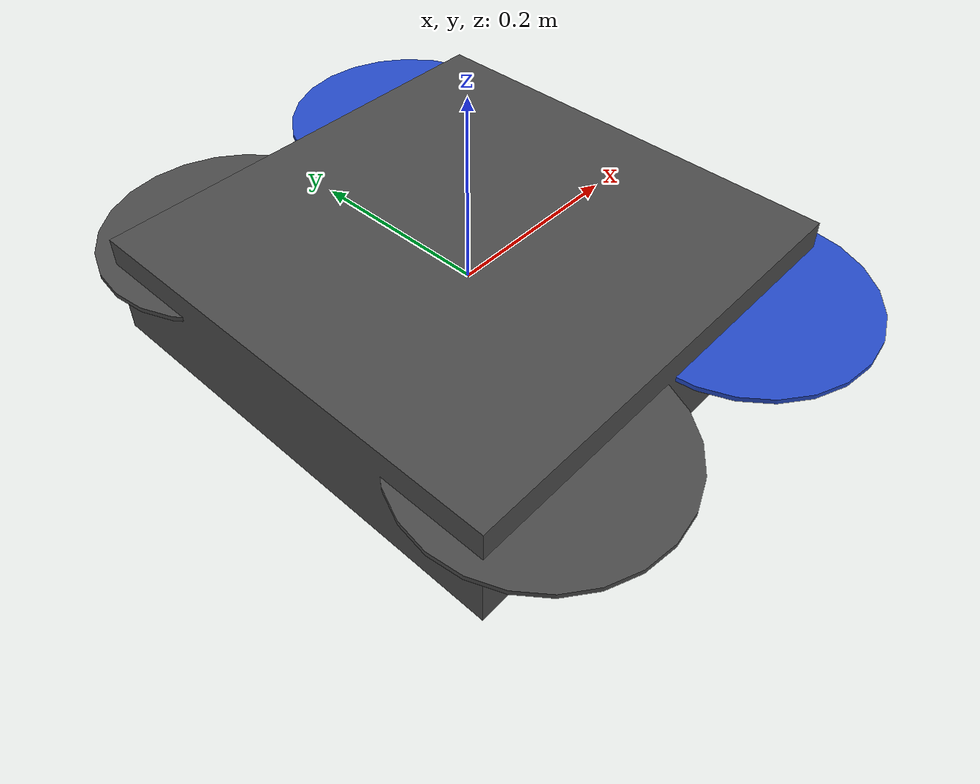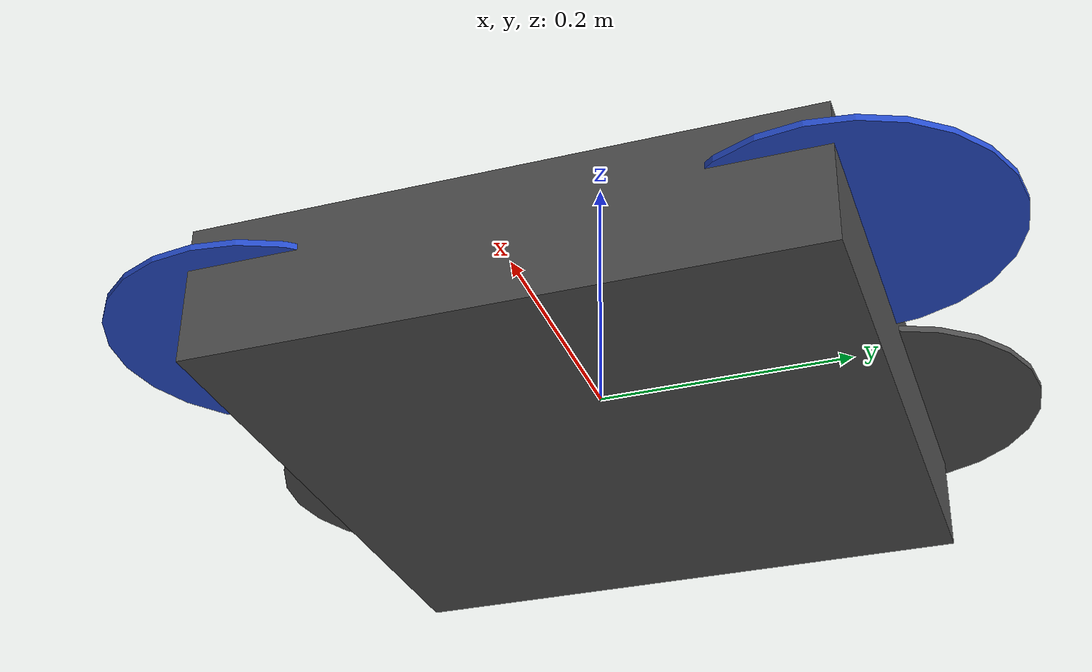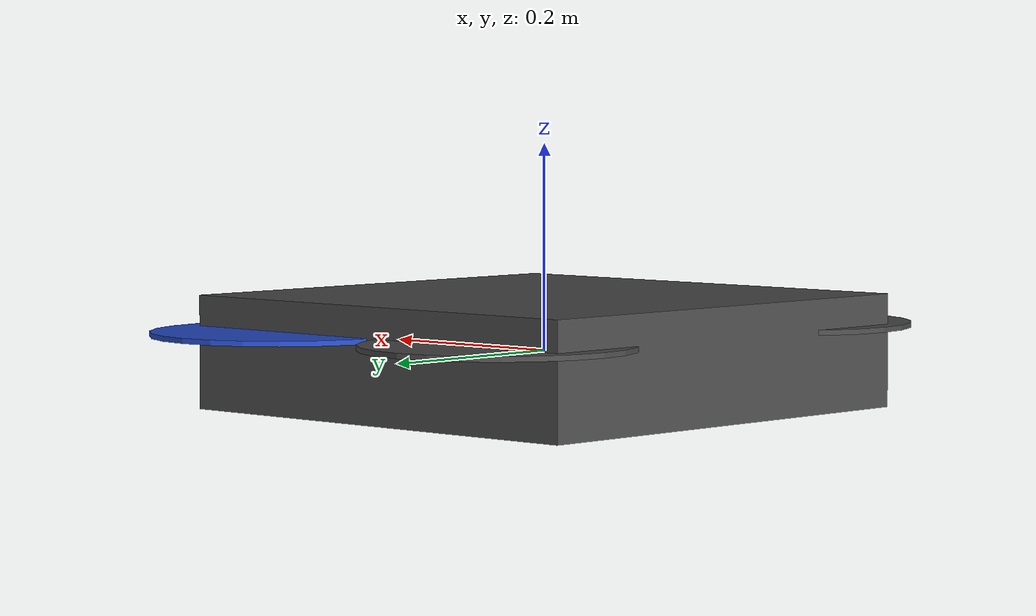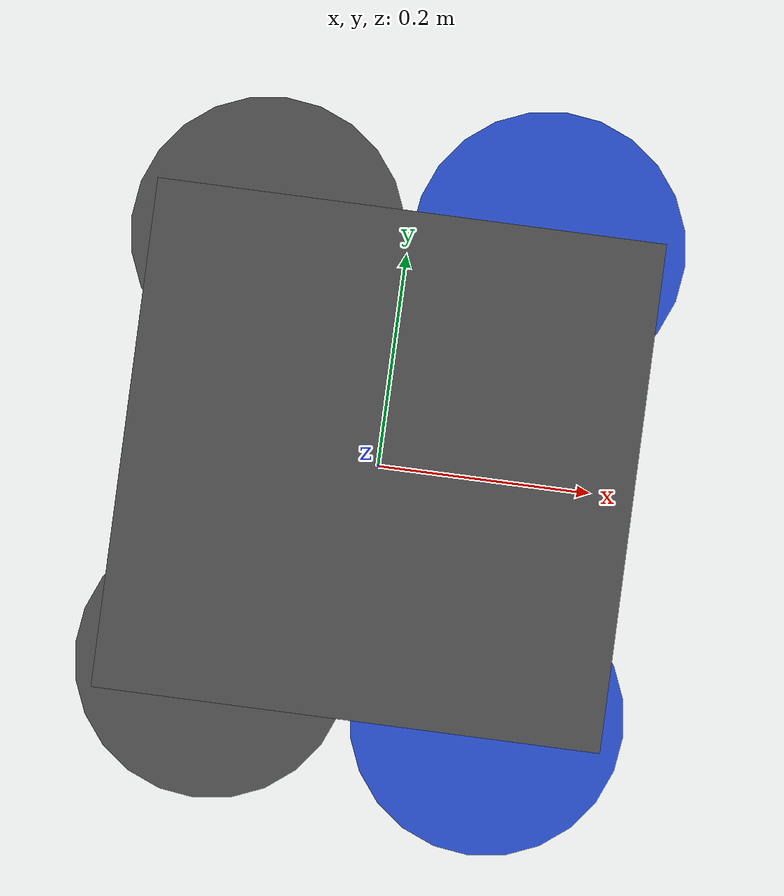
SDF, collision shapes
<?xml version='1.0'?>
<sdf version='1.6'>
  <model name='iris_gdp2020'>
    <link name='base_link'>
      <pose frame=''>0 0 0 0 -0 0</pose>
      <inertial>
        <pose frame=''>0 0 0 0 -0 0</pose>
        <mass>1.5</mass>
        <inertia>
          <ixx>0.029125</ixx>
          <ixy>0</ixy>
          <ixz>0</ixz>
          <iyy>0.029125</iyy>
          <iyz>0</iyz>
          <izz>0.055225</izz>
        </inertia>
      </inertial>
      <collision name='base_link_inertia_collision'>
        <pose frame=''>0 0 0 0 -0 0</pose>
        <geometry>
          <box>
            <size>0.47 0.47 0.11</size>
          </box>
        </geometry>
        <surface>
          <contact>
            <ode>
              <min_depth>0.001</min_depth>
              <max_vel>0</max_vel>
            </ode>
          </contact>
          <friction>
            <ode/>
          </friction>
        </surface>
      </collision>
      <visual name='base_link_inertia_visual'>
        <pose frame=''>0 0 0 0 -0 0</pose>
        <geometry>
          <mesh>
            <scale>1 1 1</scale>
            <uri>model://meshes/iris.stl</uri>
          </mesh>
        </geometry>
        <material>
          <script>
            <name>Gazebo/DarkGrey</name>
            <uri>file://media/materials/scripts/gazebo.material</uri>
          </script>
        </material>
      </visual>
      <gravity>1</gravity>
      <velocity_decay/>
    </link>
    <link name='/imu_link'>
      <pose frame=''>0 0 0 0 -0 0</pose>
      <inertial>
        <pose frame=''>0 0 0 0 -0 0</pose>
        <mass>0.015</mass>
        <inertia>
          <ixx>1e-05</ixx>
          <ixy>0</ixy>
          <ixz>0</ixz>
          <iyy>1e-05</iyy>
          <iyz>0</iyz>
          <izz>1e-05</izz>
        </inertia>
      </inertial>
    </link>
    <joint name='/imu_joint' type='revolute'>
      <child>/imu_link</child>
      <parent>base_link</parent>
      <axis>
        <xyz>1 0 0</xyz>
        <limit>
          <lower>0</lower>
          <upper>0</upper>
          <effort>0</effort>
          <velocity>0</velocity>
        </limit>
        <dynamics>
          <spring_reference>0</spring_reference>
          <spring_stiffness>0</spring_stiffness>
        </dynamics>
        <use_parent_model_frame>1</use_parent_model_frame>
      </axis>
    </joint>
    <link name='rotor_0'>
      <pose frame=''>0.13 -0.22 0.023 0 -0 0</pose>
      <inertial>
        <pose frame=''>0 0 0 0 -0 0</pose>
        <mass>0.005</mass>
        <inertia>
          <ixx>9.75e-07</ixx>
          <ixy>0</ixy>
          <ixz>0</ixz>
          <iyy>0.000273104</iyy>
          <iyz>0</iyz>
          <izz>0.000274004</izz>
        </inertia>
      </inertial>
      <collision name='rotor_0_collision'>
        <pose frame=''>0 0 0 0 -0 0</pose>
        <geometry>
          <cylinder>
            <length>0.005</length>
            <radius>0.128</radius>
          </cylinder>
        </geometry>
        <surface>
          <contact>
            <ode/>
          </contact>
          <friction>
            <ode/>
          </friction>
        </surface>
      </collision>
      <visual name='rotor_0_visual'>
        <pose frame=''>0 0 0 0 -0 0</pose>
        <geometry>
          <mesh>
            <scale>1 1 1</scale>
            <uri>model://meshes/iris_prop_ccw.dae</uri>
          </mesh>
        </geometry>
        <material>
          <script>
            <name>Gazebo/Blue</name>
            <uri>file://media/materials/scripts/gazebo.material</uri>
          </script>
        </material>
      </visual>
      <gravity>1</gravity>
      <velocity_decay/>
    </link>
    <joint name='rotor_0_joint' type='revolute'>
      <child>rotor_0</child>
      <parent>base_link</parent>
      <axis>
        <xyz>0 0 1</xyz>
        <limit>
          <lower>-1e+16</lower>
          <upper>1e+16</upper>
        </limit>
        <dynamics>
          <spring_reference>0</spring_reference>
          <spring_stiffness>0</spring_stiffness>
        </dynamics>
        <use_parent_model_frame>1</use_parent_model_frame>
      </axis>
    </joint>
    <link name='rotor_1'>
      <pose frame=''>-0.13 0.2 0.023 0 -0 0</pose>
      <inertial>
        <pose frame=''>0 0 0 0 -0 0</pose>
        <mass>0.005</mass>
        <inertia>
          <ixx>9.75e-07</ixx>
          <ixy>0</ixy>
          <ixz>0</ixz>
          <iyy>0.000273104</iyy>
          <iyz>0</iyz>
          <izz>0.000274004</izz>
        </inertia>
      </inertial>
      <collision name='rotor_1_collision'>
        <pose frame=''>0 0 0 0 -0 0</pose>
        <geometry>
          <cylinder>
            <length>0.005</length>
            <radius>0.128</radius>
          </cylinder>
        </geometry>
        <surface>
          <contact>
            <ode/>
          </contact>
          <friction>
            <ode/>
          </friction>
        </surface>
      </collision>
      <visual name='rotor_1_visual'>
        <pose frame=''>0 0 0 0 -0 0</pose>
        <geometry>
          <mesh>
            <scale>1 1 1</scale>
            <uri>model://meshes/iris_prop_ccw.dae</uri>
          </mesh>
        </geometry>
        <material>
          <script>
            <name>Gazebo/DarkGrey</name>
            <uri>file://media/materials/scripts/gazebo.material</uri>
          </script>
        </material>
      </visual>
      <gravity>1</gravity>
      <velocity_decay/>
    </link>
    <joint name='rotor_1_joint' type='revolute'>
      <child>rotor_1</child>
      <parent>base_link</parent>
      <axis>
        <xyz>0 0 1</xyz>
        <limit>
          <lower>-1e+16</lower>
          <upper>1e+16</upper>
        </limit>
        <dynamics>
          <spring_reference>0</spring_reference>
          <spring_stiffness>0</spring_stiffness>
        </dynamics>
        <use_parent_model_frame>1</use_parent_model_frame>
      </axis>
    </joint>
    <link name='rotor_2'>
      <pose frame=''>0.13 0.22 0.023 0 -0 0</pose>
      <inertial>
        <pose frame=''>0 0 0 0 -0 0</pose>
        <mass>0.005</mass>
        <inertia>
          <ixx>9.75e-07</ixx>
          <ixy>0</ixy>
          <ixz>0</ixz>
          <iyy>0.000273104</iyy>
          <iyz>0</iyz>
          <izz>0.000274004</izz>
        </inertia>
      </inertial>
      <collision name='rotor_2_collision'>
        <pose frame=''>0 0 0 0 -0 0</pose>
        <geometry>
          <cylinder>
            <length>0.005</length>
            <radius>0.128</radius>
          </cylinder>
        </geometry>
        <surface>
          <contact>
            <ode/>
          </contact>
          <friction>
            <ode/>
          </friction>
        </surface>
      </collision>
      <visual name='rotor_2_visual'>
        <pose frame=''>0 0 0 0 -0 0</pose>
        <geometry>
          <mesh>
            <scale>1 1 1</scale>
            <uri>model://meshes/iris_prop_cw.dae</uri>
          </mesh>
        </geometry>
        <material>
          <script>
            <name>Gazebo/Blue</name>
            <uri>file://media/materials/scripts/gazebo.material</uri>
          </script>
        </material>
      </visual>
      <gravity>1</gravity>
      <velocity_decay/>
    </link>
    <joint name='rotor_2_joint' type='revolute'>
      <child>rotor_2</child>
      <parent>base_link</parent>
      <axis>
        <xyz>0 0 1</xyz>
        <limit>
          <lower>-1e+16</lower>
          <upper>1e+16</upper>
        </limit>
        <dynamics>
          <spring_reference>0</spring_reference>
          <spring_stiffness>0</spring_stiffness>
        </dynamics>
        <use_parent_model_frame>1</use_parent_model_frame>
      </axis>
    </joint>
    <link name='rotor_3'>
      <pose frame=''>-0.13 -0.2 0.023 0 -0 0</pose>
      <inertial>
        <pose frame=''>0 0 0 0 -0 0</pose>
        <mass>0.005</mass>
        <inertia>
          <ixx>9.75e-07</ixx>
          <ixy>0</ixy>
          <ixz>0</ixz>
          <iyy>0.000273104</iyy>
          <iyz>0</iyz>
          <izz>0.000274004</izz>
        </inertia>
      </inertial>
      <collision name='rotor_3_collision'>
        <pose frame=''>0 0 0 0 -0 0</pose>
        <geometry>
          <cylinder>
            <length>0.005</length>
            <radius>0.128</radius>
          </cylinder>
        </geometry>
        <surface>
          <contact>
            <ode/>
          </contact>
          <friction>
            <ode/>
          </friction>
        </surface>
      </collision>
      <visual name='rotor_3_visual'>
        <pose frame=''>0 0 0 0 -0 0</pose>
        <geometry>
          <mesh>
            <scale>1 1 1</scale>
            <uri>model://meshes/iris_prop_cw.dae</uri>
          </mesh>
        </geometry>
        <material>
          <script>
            <name>Gazebo/DarkGrey</name>
            <uri>file://media/materials/scripts/gazebo.material</uri>
          </script>
        </material>
      </visual>
      <gravity>1</gravity>
      <velocity_decay/>
    </link>
    <joint name='rotor_3_joint' type='revolute'>
      <child>rotor_3</child>
      <parent>base_link</parent>
      <axis>
        <xyz>0 0 1</xyz>
        <limit>
          <lower>-1e+16</lower>
          <upper>1e+16</upper>
        </limit>
        <dynamics>
          <spring_reference>0</spring_reference>
          <spring_stiffness>0</spring_stiffness>
        </dynamics>
        <use_parent_model_frame>1</use_parent_model_frame>
      </axis>
    </joint>

    <!-- Ultrasonic sensors here-->
    <link name="sonar_rotor_0_top">
      <pose frame=''>0.13 -0.22 0.05 0 -1.5708 0</pose>
    <inertial>
      <pose frame=''>0 0 0 0 0 0</pose>

      <mass>0.001</mass>
      <inertia>
       <ixx>0.000000017</ixx>
       <ixy>0</ixy>
       <ixz>0</ixz>
       <iyy>0.000000017</iyy>
       <iyz>0</iyz>
       <izz>0.000000017</izz>
     </inertia>
    </inertial>
    <collision name="collision">
      <pose frame=''>0 0 0 0 -0 0</pose>
      <geometry>
        <box>
          <size>0.001 0.001 0.001</size>
        </box>
      </geometry>
    </collision>
    <visual name="visual">
      <pose frame=''>0 0 0 0 -0 0</pose>
      <geometry>
        <box>
          <size>0.001 0.001 0.001</size>
        </box>
      </geometry>
    </visual>

    <sensor name="sonar_0_top" type="ray">
      <update_rate>20</update_rate>
      <pose>0 0 0.0025 0 0 0</pose>
      <visualize>true</visualize>
      <ray>
        <scan>
          <horizontal>
            <samples>10</samples>
            <resolution>1</resolution>
            <!-- Minimum angle in radians -->
            <!-- 10 degs -->
            <min_angle>-0.174533</min_angle>
            <max_angle> 0.174533</max_angle>
          </horizontal>
          <vertical>
            <samples>10</samples>
            <resolution>1</resolution>
            <min_angle>-0.174533</min_angle>
            <max_angle> 0.174533</max_angle>
          </vertical>
        </scan>
        <range>
          <min>0.01</min>
          <max>1</max>
          <resolution>0.01</resolution>
        </range>
      </ray>
      <plugin filename="libhector_gazebo_ros_sonar.so" name="gazebo_ros_sonar_controller">
        <topicName>/uav1/distance_0_top</topicName>
        <frameId>sonar_rotor_0_top</frameId>
      </plugin>
    </sensor>

  </link>

  <joint name='rotor_0_top_sensor_joint' type='fixed'>
      <parent>rotor_0</parent>
      <child>sonar_rotor_0_top</child>
      <pose> 0 0 0 0 0 0 </pose>
    </joint>

   <link name="sonar_rotor_0_bottom">
      <pose frame=''>0.13 -0.22 -0.05 0 1.5708 0</pose>
    <inertial>
      <pose frame=''>0 0 0 0 0 0</pose>

      <mass>0.001</mass>
      <inertia>
       <ixx>0.000000017</ixx>
       <ixy>0</ixy>
       <ixz>0</ixz>
       <iyy>0.000000017</iyy>
       <iyz>0</iyz>
       <izz>0.000000017</izz>
     </inertia>
    </inertial>
    <collision name="collision">
      <pose frame=''>0 0 0 0 -0 0</pose>
      <geometry>
        <box>
          <size>0.001 0.001 0.001</size>
        </box>
      </geometry>
    </collision>
    <visual name="visual">
      <pose frame=''>0 0 0 0 -0 0</pose>
      <geometry>
        <box>
          <size>0.001 0.001 0.001</size>
        </box>
      </geometry>
    </visual>

    <sensor name="sonar_0_bottom" type="ray">
      <update_rate>20</update_rate>
      <pose>0 0 0.0025 0 0 0</pose>
      <visualize>true</visualize>
      <ray>
        <scan>
          <horizontal>
            <samples>10</samples>
            <resolution>1</resolution>
            <!-- Minimum angle in radians -->
            <!-- 10 degs -->
            <min_angle>-0.174533</min_angle>
            <max_angle> 0.174533</max_angle>
          </horizontal>
          <vertical>
            <samples>10</samples>
            <resolution>1</resolution>
            <min_angle>-0.174533</min_angle>
            <max_angle> 0.174533</max_angle>
          </vertical>
        </scan>
        <range>
          <min>0.01</min>
          <max>1</max>
          <resolution>0.01</resolution>
        </range>
      </ray>
      <plugin filename="libhector_gazebo_ros_sonar.so" name="gazebo_ros_sonar_controller">
        <topicName>/uav1/distance_0_bottom</topicName>
        <frameId>sonar_rotor_0_bottom</frameId>
      </plugin>
    </sensor>

  </link>

  <joint name='rotor_0_bottom_sensor_joint' type='fixed'>
      <parent>rotor_0</parent>
      <child>sonar_rotor_0_bottom</child>
      <pose> 0 0 0 0 0 0 </pose>
    </joint>

  <link name="sonar_rotor_1_top">
      <pose frame=''>-0.13 0.2 0.05 0 -1.5708 0</pose>
    <inertial>
      <pose frame=''>0 0 0 0 0 0</pose>

      <mass>0.001</mass>
      <inertia>
       <ixx>0.000000017</ixx>
       <ixy>0</ixy>
       <ixz>0</ixz>
       <iyy>0.000000017</iyy>
       <iyz>0</iyz>
       <izz>0.000000017</izz>
     </inertia>
    </inertial>
    <collision name="collision">
      <pose frame=''>0 0 0 0 -0 0</pose>
      <geometry>
        <box>
          <size>0.001 0.001 0.001</size>
        </box>
      </geometry>
    </collision>
    <visual name="visual">
      <pose frame=''>0 0 0 0 -0 0</pose>
      <geometry>
        <box>
          <size>0.001 0.001 0.001</size>
        </box>
      </geometry>
    </visual>

    <sensor name="sonar_1_top" type="ray">
      <update_rate>20</update_rate>
      <pose>0 0 0.0025 0 0 0</pose>
      <visualize>true</visualize>
      <ray>
        <scan>
          <horizontal>
            <samples>10</samples>
            <resolution>1</resolution>
            <!-- Minimum angle in radians -->
            <!-- 10 degs -->
            <min_angle>-0.174533</min_angle>
            <max_angle> 0.174533</max_angle>
          </horizontal>
          <vertical>
            <samples>10</samples>
            <resolution>1</resolution>
            <min_angle>-0.174533</min_angle>
            <max_angle> 0.174533</max_angle>
          </vertical>
        </scan>
        <range>
          <min>0.01</min>
          <max>1</max>
          <resolution>0.01</resolution>
        </range>
      </ray>
      <plugin filename="libhector_gazebo_ros_sonar.so" name="gazebo_ros_sonar_controller">
        <topicName>/uav1/distance_1_top</topicName>
        <frameId>sonar_rotor_1_top</frameId>
      </plugin>
    </sensor>

  </link>

  <joint name='rotor_1_top_sensor_joint' type='fixed'>
      <parent>rotor_1</parent>
      <child>sonar_rotor_1_top</child>
      <pose> 0 0 0 0 0 0 </pose>
    </joint>

   <link name="sonar_rotor_1_bottom">
      <pose frame=''>-0.13 0.2 -0.05 0 1.5708 0</pose>
    <inertial>
      <pose frame=''>0 0 0 0 0 0</pose>

      <mass>0.001</mass>
      <inertia>
       <ixx>0.000000017</ixx>
       <ixy>0</ixy>
       <ixz>0</ixz>
       <iyy>0.000000017</iyy>
       <iyz>0</iyz>
       <izz>0.000000017</izz>
     </inertia>
    </inertial>
    <collision name="collision">
      <pose frame=''>0 0 0 0 -0 0</pose>
      <geometry>
        <box>
          <size>0.001 0.001 0.001</size>
        </box>
      </geometry>
    </collision>
    <visual name="visual">
      <pose frame=''>0 0 0 0 -0 0</pose>
      <geometry>
        <box>
          <size>0.001 0.001 0.001</size>
        </box>
      </geometry>
    </visual>

    <sensor name="sonar_1_bottom" type="ray">
      <update_rate>20</update_rate>
      <pose>0 0 0.0025 0 0 0</pose>
      <visualize>true</visualize>
      <ray>
        <scan>
          <horizontal>
            <samples>10</samples>
            <resolution>1</resolution>
            <!-- Minimum angle in radians -->
            <!-- 10 degs -->
            <min_angle>-0.174533</min_angle>
            <max_angle> 0.174533</max_angle>
          </horizontal>
          <vertical>
            <samples>10</samples>
            <resolution>1</resolution>
            <min_angle>-0.174533</min_angle>
            <max_angle> 0.174533</max_angle>
          </vertical>
        </scan>
        <range>
          <min>0.01</min>
          <max>1</max>
          <resolution>0.01</resolution>
        </range>
      </ray>
      <plugin filename="libhector_gazebo_ros_sonar.so" name="gazebo_ros_sonar_controller">
        <topicName>/uav1/distance_1_bottom</topicName>
        <frameId>sonar_rotor_1_bottom</frameId>
      </plugin>
    </sensor>

  </link>

  <joint name='rotor_1_bottom_sensor_joint' type='fixed'>
      <parent>rotor_1</parent>
      <child>sonar_rotor_1_bottom</child>
      <pose> 0 0 0 0 0 0 </pose>
    </joint>

   <link name="sonar_rotor_2_top">
      <pose frame=''>0.13 0.22 0.05 0 -1.5708 0</pose>
    <inertial>
      <pose frame=''>0 0 0 0 0 0</pose>

      <mass>0.001</mass>
      <inertia>
       <ixx>0.000000017</ixx>
       <ixy>0</ixy>
       <ixz>0</ixz>
       <iyy>0.000000017</iyy>
       <iyz>0</iyz>
       <izz>0.000000017</izz>
     </inertia>
    </inertial>
    <collision name="collision">
      <pose frame=''>0 0 0 0 -0 0</pose>
      <geometry>
        <box>
          <size>0.001 0.001 0.001</size>
        </box>
      </geometry>
    </collision>
    <visual name="visual">
      <pose frame=''>0 0 0 0 -0 0</pose>
      <geometry>
        <box>
          <size>0.001 0.001 0.001</size>
        </box>
      </geometry>
    </visual>

    <sensor name="sonar_2_top" type="ray">
      <update_rate>20</update_rate>
      <pose>0 0 0.0025 0 0 0</pose>
      <visualize>true</visualize>
      <ray>
        <scan>
          <horizontal>
            <samples>10</samples>
            <resolution>1</resolution>
            <!-- Minimum angle in radians -->
            <!-- 10 degs -->
            <min_angle>-0.174533</min_angle>
            <max_angle> 0.174533</max_angle>
          </horizontal>
          <vertical>
            <samples>10</samples>
            <resolution>1</resolution>
            <min_angle>-0.174533</min_angle>
            <max_angle> 0.174533</max_angle>
          </vertical>
        </scan>
        <range>
          <min>0.01</min>
          <max>1</max>
          <resolution>0.01</resolution>
        </range>
      </ray>
      <plugin filename="libhector_gazebo_ros_sonar.so" name="gazebo_ros_sonar_controller">
        <topicName>/uav1/distance_2_top</topicName>
        <frameId>sonar_rotor_2_top</frameId>
      </plugin>
    </sensor>

  </link>

  <joint name='rotor_2_top_sensor_joint' type='fixed'>
      <parent>rotor_2</parent>
      <child>sonar_rotor_2_top</child>
      <pose> 0 0 0 0 0 0 </pose>
    </joint>

   <link name="sonar_rotor_2_bottom">
      <pose frame=''>0.13 0.22 -0.05 0 1.5708 0</pose>
    <inertial>
      <pose frame=''>0 0 0 0 0 0</pose>

      <mass>0.001</mass>
      <inertia>
       <ixx>0.000000017</ixx>
       <ixy>0</ixy>
       <ixz>0</ixz>
       <iyy>0.000000017</iyy>
       <iyz>0</iyz>
       <izz>0.000000017</izz>
     </inertia>
    </inertial>
    <collision name="collision">
      <pose frame=''>0 0 0 0 -0 0</pose>
      <geometry>
        <box>
          <size>0.001 0.001 0.001</size>
        </box>
      </geometry>
    </collision>
    <visual name="visual">
      <pose frame=''>0 0 0 0 -0 0</pose>
      <geometry>
        <box>
          <size>0.001 0.001 0.001</size>
        </box>
      </geometry>
    </visual>

    <sensor name="sonar_2_bottom" type="ray">
      <update_rate>20</update_rate>
      <pose>0 0 0.0025 0 0 0</pose>
      <visualize>true</visualize>
      <ray>
        <scan>
          <horizontal>
            <samples>10</samples>
            <resolution>1</resolution>
            <!-- Minimum angle in radians -->
            <!-- 10 degs -->
            <min_angle>-0.174533</min_angle>
            <max_angle> 0.174533</max_angle>
          </horizontal>
          <vertical>
            <samples>10</samples>
            <resolution>1</resolution>
            <min_angle>-0.174533</min_angle>
            <max_angle> 0.174533</max_angle>
          </vertical>
        </scan>
        <range>
          <min>0.01</min>
          <max>1</max>
          <resolution>0.01</resolution>
        </range>
      </ray>
      <plugin filename="libhector_gazebo_ros_sonar.so" name="gazebo_ros_sonar_controller">
        <topicName>/uav1/distance_2_bottom</topicName>
        <frameId>sonar_rotor_2_bottom</frameId>
      </plugin>
    </sensor>

  </link>

  <joint name='rotor_2_bottom_sensor_joint' type='fixed'>
      <parent>rotor_2</parent>
      <child>sonar_rotor_2_bottom</child>
      <pose> 0 0 0 0 0 0 </pose>
    </joint>

  <link name="sonar_rotor_3_top">
      <pose frame=''>-0.13 -0.2 0.05 0 -1.5708 0</pose>
    <inertial>
      <pose frame=''>0 0 0 0 0 0</pose>

      <mass>0.001</mass>
      <inertia>
       <ixx>0.000000017</ixx>
       <ixy>0</ixy>
       <ixz>0</ixz>
       <iyy>0.000000017</iyy>
       <iyz>0</iyz>
       <izz>0.000000017</izz>
     </inertia>
    </inertial>
    <collision name="collision">
      <pose frame=''>0 0 0 0 -0 0</pose>
      <geometry>
        <box>
          <size>0.001 0.001 0.001</size>
        </box>
      </geometry>
    </collision>
    <visual name="visual">
      <pose frame=''>0 0 0 0 -0 0</pose>
      <geometry>
        <box>
          <size>0.001 0.001 0.001</size>
        </box>
      </geometry>
    </visual>

    <sensor name="sonar_3_top" type="ray">
      <update_rate>20</update_rate>
      <pose>0 0 0.0025 0 0 0</pose>
      <visualize>true</visualize>
      <ray>
        <scan>
          <horizontal>
            <samples>10</samples>
            <resolution>1</resolution>
            <!-- Minimum angle in radians -->
            <!-- 10 degs -->
            <min_angle>-0.174533</min_angle>
            <max_angle> 0.174533</max_angle>
          </horizontal>
          <vertical>
            <samples>10</samples>
            <resolution>1</resolution>
            <min_angle>-0.174533</min_angle>
            <max_angle> 0.174533</max_angle>
          </vertical>
        </scan>
        <range>
          <min>0.01</min>
          <max>1</max>
          <resolution>0.01</resolution>
        </range>
      </ray>
      <plugin filename="libhector_gazebo_ros_sonar.so" name="gazebo_ros_sonar_controller">
        <topicName>/uav1/distance_3_top</topicName>
        <frameId>sonar_rotor_3_top</frameId>
      </plugin>
    </sensor>

  </link>

  <joint name='rotor_3_top_sensor_joint' type='fixed'>
      <parent>rotor_3</parent>
      <child>sonar_rotor_3_top</child>
      <pose> 0 0 0 0 0 0 </pose>
    </joint>

   <link name="sonar_rotor_3_bottom">
      <pose frame=''>-0.13 -0.2 -0.05 0 1.5708 0</pose>
    <inertial>
      <pose frame=''>0 0 0 0 0 0</pose>

      <mass>0.001</mass>
      <inertia>
       <ixx>0.000000017</ixx>
       <ixy>0</ixy>
       <ixz>0</ixz>
       <iyy>0.000000017</iyy>
       <iyz>0</iyz>
       <izz>0.000000017</izz>
     </inertia>
    </inertial>
    <collision name="collision">
      <pose frame=''>0 0 0 0 -0 0</pose>
      <geometry>
        <box>
          <size>0.001 0.001 0.001</size>
        </box>
      </geometry>
    </collision>
    <visual name="visual">
      <pose frame=''>0 0 0 0 -0 0</pose>
      <geometry>
        <box>
          <size>0.001 0.001 0.001</size>
        </box>
      </geometry>
    </visual>

    <sensor name="sonar_3_bottom" type="ray">
      <update_rate>20</update_rate>
      <pose>0 0 0.0025 0 0 0</pose>
      <visualize>true</visualize>
      <ray>
        <scan>
          <horizontal>
            <samples>10</samples>
            <resolution>1</resolution>
            <!-- Minimum angle in radians -->
            <!-- 10 degs -->
            <min_angle>-0.174533</min_angle>
            <max_angle> 0.174533</max_angle>
          </horizontal>
          <vertical>
            <samples>10</samples>
            <resolution>1</resolution>
            <min_angle>-0.174533</min_angle>
            <max_angle> 0.174533</max_angle>
          </vertical>
        </scan>
        <range>
          <min>0.01</min>
          <max>1</max>
          <resolution>0.01</resolution>
        </range>
      </ray>
      <plugin filename="libhector_gazebo_ros_sonar.so" name="gazebo_ros_sonar_controller">
        <topicName>/uav1/distance_3_bottom</topicName>
        <frameId>sonar_rotor_3_bottom</frameId>
      </plugin>
    </sensor>

  </link>

  <joint name='rotor_3_bottom_sensor_joint' type='fixed'>
      <parent>rotor_3</parent>
      <child>sonar_rotor_3_bottom</child>
      <pose> 0 0 0 0 0 0 </pose>
    </joint>

    <plugin name='rosbag' filename='libgazebo_multirotor_base_plugin.so'>
      <robotNamespace/>
      <linkName>base_link</linkName>
      <rotorVelocitySlowdownSim>10</rotorVelocitySlowdownSim>
    </plugin>
    <plugin name='front_right_motor_model' filename='libgazebo_motor_model_gdp2020_1.so'>
      <robotNamespace/>
      <jointName>rotor_0_joint</jointName>
      <linkName>rotor_0</linkName>
      <turningDirection>ccw</turningDirection>
      <timeConstantUp>0.0125</timeConstantUp>
      <timeConstantDown>0.025</timeConstantDown>
      <maxRotVelocity>1100</maxRotVelocity>
      <motorConstant>8.54858e-06</motorConstant>
      <momentConstant>0.06</momentConstant>
      <commandSubTopic>/gazebo/command/motor_speed</commandSubTopic>
      <motorNumber>0</motorNumber>
      <rotorDragCoefficient>0.000806428</rotorDragCoefficient>
      <rollingMomentCoefficient>1e-06</rollingMomentCoefficient>
      <motorSpeedPubTopic>/motor_speed/0</motorSpeedPubTopic>
      <rotorVelocitySlowdownSim>10</rotorVelocitySlowdownSim>
    </plugin>
    <plugin name='back_left_motor_model' filename='libgazebo_motor_model_gdp2020_1.so'>
      <robotNamespace/>
      <jointName>rotor_1_joint</jointName>
      <linkName>rotor_1</linkName>
      <turningDirection>ccw</turningDirection>
      <timeConstantUp>0.0125</timeConstantUp>
      <timeConstantDown>0.025</timeConstantDown>
      <maxRotVelocity>1100</maxRotVelocity>
      <motorConstant>8.54858e-06</motorConstant>
      <momentConstant>0.06</momentConstant>
      <commandSubTopic>/gazebo/command/motor_speed</commandSubTopic>
      <motorNumber>1</motorNumber>
      <rotorDragCoefficient>0.000806428</rotorDragCoefficient>
      <rollingMomentCoefficient>1e-06</rollingMomentCoefficient>
      <motorSpeedPubTopic>/motor_speed/1</motorSpeedPubTopic>
      <rotorVelocitySlowdownSim>10</rotorVelocitySlowdownSim>
    </plugin>
    <plugin name='front_left_motor_model' filename='libgazebo_motor_model_gdp2020_1.so'>
      <robotNamespace/>
      <jointName>rotor_2_joint</jointName>
      <linkName>rotor_2</linkName>
      <turningDirection>cw</turningDirection>
      <timeConstantUp>0.0125</timeConstantUp>
      <timeConstantDown>0.025</timeConstantDown>
      <maxRotVelocity>1100</maxRotVelocity>
      <motorConstant>8.54858e-06</motorConstant>
      <momentConstant>0.06</momentConstant>
      <commandSubTopic>/gazebo/command/motor_speed</commandSubTopic>
      <motorNumber>2</motorNumber>
      <rotorDragCoefficient>0.000806428</rotorDragCoefficient>
      <rollingMomentCoefficient>1e-06</rollingMomentCoefficient>
      <motorSpeedPubTopic>/motor_speed/2</motorSpeedPubTopic>
      <rotorVelocitySlowdownSim>10</rotorVelocitySlowdownSim>
    </plugin>
    <plugin name='back_right_motor_model' filename='libgazebo_motor_model_gdp2020_1.so'>
      <robotNamespace/>
      <jointName>rotor_3_joint</jointName>
      <linkName>rotor_3</linkName>
      <turningDirection>cw</turningDirection>
      <timeConstantUp>0.0125</timeConstantUp>
      <timeConstantDown>0.025</timeConstantDown>
      <maxRotVelocity>1100</maxRotVelocity>
      <motorConstant>8.54858e-06</motorConstant>
      <momentConstant>0.06</momentConstant>
      <commandSubTopic>/gazebo/command/motor_speed</commandSubTopic>
      <motorNumber>3</motorNumber>
      <rotorDragCoefficient>0.000806428</rotorDragCoefficient>
      <rollingMomentCoefficient>1e-06</rollingMomentCoefficient>
      <motorSpeedPubTopic>/motor_speed/3</motorSpeedPubTopic>
      <rotorVelocitySlowdownSim>10</rotorVelocitySlowdownSim>
    </plugin>
    <plugin name='gps_plugin' filename='libgazebo_gps_plugin.so'>
      <robotNamespace/>
      <gpsNoise>1</gpsNoise>
    </plugin>
    <plugin name='magnetometer_plugin' filename='libgazebo_magnetometer_plugin.so'>
      <robotNamespace/>
      <pubRate>20</pubRate>
      <noiseDensity>0.0004</noiseDensity>
      <randomWalk>6.4e-06</randomWalk>
      <biasCorrelationTime>600</biasCorrelationTime>
      <magTopic>/mag</magTopic>
    </plugin>
    <plugin name='barometer_plugin' filename='libgazebo_barometer_plugin.so'>
      <robotNamespace/>
      <pubRate>10</pubRate>
      <baroTopic>/baro</baroTopic>
    </plugin>
    <plugin name='mavlink_interface' filename='libgazebo_mavlink_interface.so'>
      <robotNamespace/>
      <imuSubTopic>/imu</imuSubTopic>
      <gpsSubTopic>/gps</gpsSubTopic>
      <magSubTopic>/mag</magSubTopic>
      <baroSubTopic>/baro</baroSubTopic>
      <mavlink_addr>INADDR_ANY</mavlink_addr>
      <mavlink_udp_port>14560</mavlink_udp_port>
      <mavlink_tcp_port>4560</mavlink_tcp_port>
      <serialEnabled>0</serialEnabled>
      <serialDevice>/dev/ttyACM0</serialDevice>
      <baudRate>921600</baudRate>
      <qgc_addr>INADDR_ANY</qgc_addr>
      <qgc_udp_port>14550</qgc_udp_port>
      <sdk_addr>INADDR_ANY</sdk_addr>
      <sdk_udp_port>14540</sdk_udp_port>
      <hil_mode>0</hil_mode>
      <hil_state_level>0</hil_state_level>
      <vehicle_is_tailsitter>0</vehicle_is_tailsitter>
      <send_vision_estimation>1</send_vision_estimation>
      <send_odometry>0</send_odometry>
      <enable_lockstep>1</enable_lockstep>
      <use_tcp>1</use_tcp>
      <motorSpeedCommandPubTopic>/gazebo/command/motor_speed</motorSpeedCommandPubTopic>
      <control_channels>
        <channel name='rotor1'>
          <input_index>0</input_index>
          <input_offset>0</input_offset>
          <input_scaling>1000</input_scaling>
          <zero_position_disarmed>0</zero_position_disarmed>
          <zero_position_armed>100</zero_position_armed>
          <joint_control_type>velocity</joint_control_type>
        </channel>
        <channel name='rotor2'>
          <input_index>1</input_index>
          <input_offset>0</input_offset>
          <input_scaling>1000</input_scaling>
          <zero_position_disarmed>0</zero_position_disarmed>
          <zero_position_armed>100</zero_position_armed>
          <joint_control_type>velocity</joint_control_type>
        </channel>
        <channel name='rotor3'>
          <input_index>2</input_index>
          <input_offset>0</input_offset>
          <input_scaling>1000</input_scaling>
          <zero_position_disarmed>0</zero_position_disarmed>
          <zero_position_armed>100</zero_position_armed>
          <joint_control_type>velocity</joint_control_type>
        </channel>
        <channel name='rotor4'>
          <input_index>3</input_index>
          <input_offset>0</input_offset>
          <input_scaling>1000</input_scaling>
          <zero_position_disarmed>0</zero_position_disarmed>
          <zero_position_armed>100</zero_position_armed>
          <joint_control_type>velocity</joint_control_type>
        </channel>
        <channel name='rotor5'>
          <input_index>4</input_index>
          <input_offset>1</input_offset>
          <input_scaling>324.6</input_scaling>
          <zero_position_disarmed>0</zero_position_disarmed>
          <zero_position_armed>0</zero_position_armed>
          <joint_control_type>velocity</joint_control_type>
          <joint_control_pid>
            <p>0.1</p>
            <i>0</i>
            <d>0</d>
            <iMax>0.0</iMax>
            <iMin>0.0</iMin>
            <cmdMax>2</cmdMax>
            <cmdMin>-2</cmdMin>
          </joint_control_pid>
          <joint_name>zephyr_delta_wing::propeller_joint</joint_name>
        </channel>
        <channel name='rotor6'>
          <input_index>5</input_index>
          <input_offset>0</input_offset>
          <input_scaling>0.524</input_scaling>
          <zero_position_disarmed>0</zero_position_disarmed>
          <zero_position_armed>0</zero_position_armed>
          <joint_control_type>position</joint_control_type>
          <joint_name>zephyr_delta_wing::flap_left_joint</joint_name>
          <joint_control_pid>
            <p>10.0</p>
            <i>0</i>
            <d>0</d>
            <iMax>0</iMax>
            <iMin>0</iMin>
            <cmdMax>20</cmdMax>
            <cmdMin>-20</cmdMin>
          </joint_control_pid>
        </channel>
        <channel name='rotor7'>
          <input_index>6</input_index>
          <input_offset>0</input_offset>
          <input_scaling>0.524</input_scaling>
          <zero_position_disarmed>0</zero_position_disarmed>
          <zero_position_armed>0</zero_position_armed>
          <joint_control_type>position</joint_control_type>
          <joint_name>zephyr_delta_wing::flap_right_joint</joint_name>
          <joint_control_pid>
            <p>10.0</p>
            <i>0</i>
            <d>0</d>
            <iMax>0</iMax>
            <iMin>0</iMin>
            <cmdMax>20</cmdMax>
            <cmdMin>-20</cmdMin>
          </joint_control_pid>
        </channel>
        <channel name='rotor8'>
          <input_index>7</input_index>
          <input_offset>0</input_offset>
          <input_scaling>0.524</input_scaling>
          <zero_position_disarmed>0</zero_position_disarmed>
          <zero_position_armed>0</zero_position_armed>
          <joint_control_type>position</joint_control_type>
        </channel>
      </control_channels>
    </plugin>
    <static>0</static>
    <plugin name='rotors_gazebo_imu_plugin' filename='libgazebo_imu_plugin.so'>
      <robotNamespace/>
      <linkName>/imu_link</linkName>
      <imuTopic>/imu</imuTopic>
      <gyroscopeNoiseDensity>0.0003394</gyroscopeNoiseDensity>
      <gyroscopeRandomWalk>3.8785e-05</gyroscopeRandomWalk>
      <gyroscopeBiasCorrelationTime>1000.0</gyroscopeBiasCorrelationTime>
      <gyroscopeTurnOnBiasSigma>0.0087</gyroscopeTurnOnBiasSigma>
      <accelerometerNoiseDensity>0.004</accelerometerNoiseDensity>
      <accelerometerRandomWalk>0.006</accelerometerRandomWalk>
      <accelerometerBiasCorrelationTime>300.0</accelerometerBiasCorrelationTime>
      <accelerometerTurnOnBiasSigma>0.196</accelerometerTurnOnBiasSigma>
    </plugin>
  </model>
</sdf>
